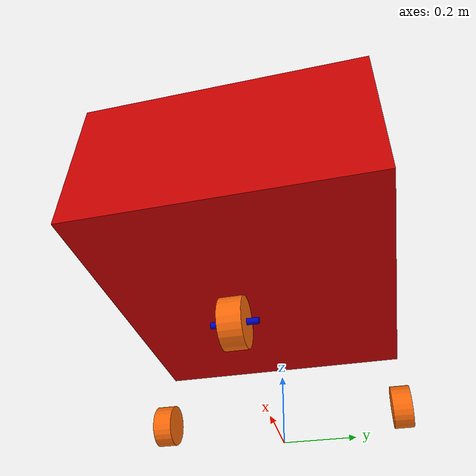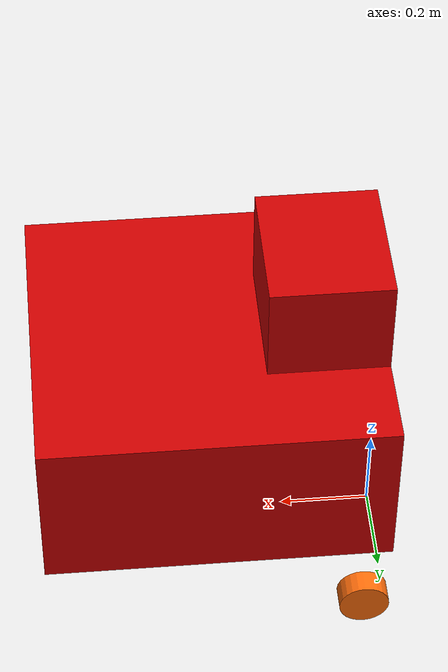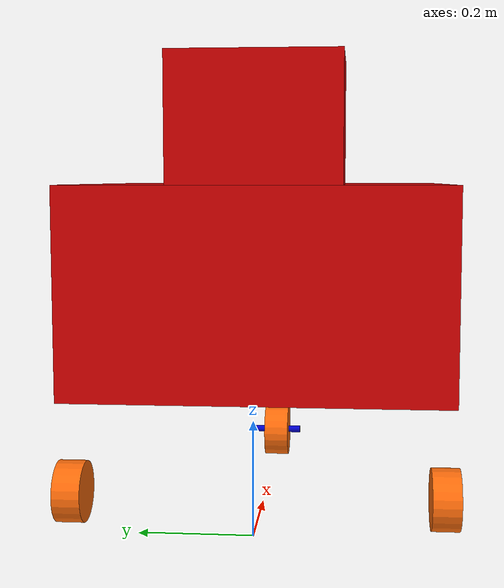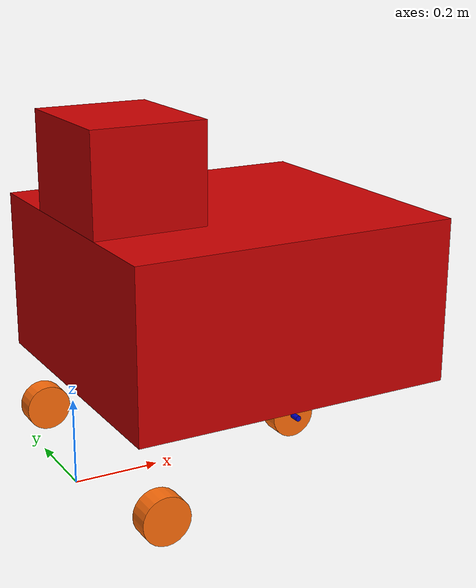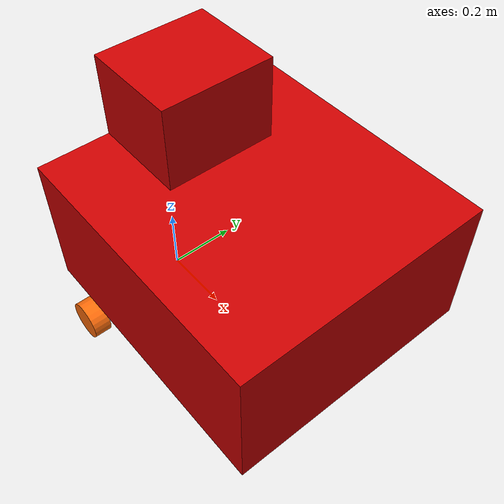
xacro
<?xml version="1.0"?>
<robot xmlns:xacro="http://www.ros.org/wiki/xacro" name="tricycle" >

  <!-- Import Rviz colors -->
  <xacro:include filename="$(find mycar)/urdf/materials.xacro" />

  <!-- Import robot  -->
  <xacro:include filename="$(find mycar)/urdf/xacro_gazebo/car/tricycle_body.xacro"/>
  <xacro:tricycle_body parent="base_link" meshes="package://gazebo_plugins/test/tricycle_drive/meshes/tricycle"/>
</robot>

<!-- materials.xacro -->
<robot>

  <material name="black">
    <color rgba="0.0 0.0 0.0 1.0"/>
  </material>

  <material name="blue">
    <color rgba="0.0 0.0 0.8 1.0"/>
  </material>

  <material name="green">
    <color rgba="0.0 0.8 0.0 1.0"/>
  </material>

  <material name="grey">
    <color rgba="0.2 0.2 0.2 1.0"/>
  </material>

  <material name="orange">
    <color rgba="${255/255} ${108/255} ${10/255} 1.0"/>
  </material>

  <material name="brown">
    <color rgba="${222/255} ${207/255} ${195/255} 1.0"/>
  </material>

  <material name="red">
    <color rgba="0.8 0.0 0.0 1.0"/>
  </material>

  <material name="white">
    <color rgba="1.0 1.0 1.0 1.0"/>
  </material>

</robot>

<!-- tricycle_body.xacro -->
<robot xmlns:xacro="http://www.ros.org/wiki/xacro">
  <xacro:property name="M_PI" value="3.1415926535897931" />
  <xacro:property name="radius_actuated_wheel" value="0.055" />
  <xacro:property name="radius_encoder_wheel" value="0.055" />

  <xacro:property name="DX" value="0.75" />
  <xacro:property name="DY" value="0.69" />
  <xacro:property name="DZ" value="0.375" />

  <xacro:property name="DX2" value="0.26" />
  <xacro:property name="DY2" value="0.30" />
  <xacro:property name="DZ2" value="0.225" />

  <xacro:include filename="$(find mycar)/urdf/xacro_gazebo/car/inertia_tensors.xacro"/>
  <xacro:include filename="$(find mycar)/urdf/xacro_gazebo/car/tricycle_chassis.xacro"/>
  <xacro:include filename="$(find mycar)/urdf/xacro_gazebo/car/wheel.xacro"/>
  <xacro:include filename="$(find mycar)/urdf/xacro_gazebo/car/wheel_actuated.xacro"/>
  <xacro:include filename="$(find mycar)/urdf/xacro_gazebo/car/tricycle_plugins.xacro"/>

  <xacro:macro name="tricycle_body" params="parent meshes">

    <!-- base_link -->
    <link name="${parent}"/>

    <!-- Chassis -->
    <xacro:tricycle_chassis name="chassis" parent="${parent}" xyz="${DX/2} 0 ${DZ/2+0.225}" rpy="0 0 0"  meshes="${meshes}" DX="${DX}" DY="${DY}" DZ="${DZ}"/>
    <xacro:tricycle_chassis name="chassis2" parent="${parent}" xyz="${DX2/2} 0 0.7125" rpy="0 0 0"  meshes="${meshes}" DX="${DX2}" DY="${DY2}" DZ="${DZ2}"/>
    <!-- Wheels  -->
    <xacro:wheel name="left"   parent="${parent}"  xyz="${radius_encoder_wheel}   ${0.69/2-0.03/2} ${radius_encoder_wheel}" rpy="${-M_PI/2} 0 0" radius="${radius_encoder_wheel}" length="0.05" meshes="${meshes}"/>
    <xacro:wheel name="right"    parent="${parent}"  xyz="${radius_encoder_wheel}  ${-0.69/2+0.03/2} ${radius_encoder_wheel}" rpy="${-M_PI/2} 0 0" radius="${radius_encoder_wheel}" length="0.05" meshes="${meshes}"/>
    <xacro:wheel_actuated name="front"  parent="${parent}"  xyz="${0.75*3/4}  0.0   ${radius_actuated_wheel}" rpy="${-M_PI/2} 0 0" radius="${radius_actuated_wheel}" length="0.05" meshes="${meshes}"/>

    <!-- Motor plugin -->
    <xacro:tricycle_drive />

  </xacro:macro>
</robot>

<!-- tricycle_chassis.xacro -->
<robot xmlns:xacro="http://ros.org/wiki/xacro">
  <xacro:property name="M_PI" value="3.1415926535897931" />

  <xacro:macro name="tricycle_chassis" params="name parent xyz rpy meshes DX DY DZ">

  <!-- Chassis -->
  <joint name="${parent}_${name}_joint" type="fixed">
    <origin xyz="${xyz}" rpy="${rpy}"/>
    <parent link="${parent}"/>
    <child link="${name}"/>
  </joint>
  <link name="${name}">
    <visual name="${name}_visual">
      <geometry name="${name}_geometry">
        <box size="${DX} ${DY} ${DZ}"/>
      </geometry>
      <material name="red"/>
    </visual>
    <collision>
      <geometry>
        <box size="${DX} ${DY} ${DZ}"/>
      </geometry>
    </collision>
    <xacro:box_inertial x="${DX}" y="${DY}"  z="${DZ}" mass="50.0"/>
  </link>

  <gazebo reference="${name}">
    <material value="Gazebo/Blue"/>
  </gazebo>

  </xacro:macro>

</robot>

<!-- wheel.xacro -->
<robot
  xmlns:xacro="http://ros.org/wiki/xacro">
  <xacro:property name="M_PI" value="3.1415926535897931" />

  <xacro:macro name="wheel" params="name parent xyz rpy radius length meshes">

  <!-- Wheel -->
  <joint name="${name}_wheel_joint" type="continuous">
    <origin xyz="${xyz}" rpy="${rpy}"/>
    <parent link="${parent}"/>
    <child link="${name}_wheel"/>
    <axis xyz="0 0 1"/>
    <anchor xyz="0 0 0"/>
    <limit effort="100" velocity="100" k_velocity="0"/>
    <joint_properties damping="0.0" friction="0.0"/>
  </joint>
  <link name="${name}_wheel">
    <visual name="${name}_wheel_visual">
      <origin xyz="0 0 0" rpy="0 0 0"/>
      <geometry name="{name}_wheel_geometry">
        <cylinder radius="${radius}" length="${length}"/>
      </geometry>
      <material name="orange"/>
    </visual>
    <collision>
      <origin xyz="0 0 0" rpy="0 0 0"/>
      <geometry>
        <cylinder radius="${radius}" length="${length}"/>
      </geometry>
    </collision>
    <xacro:cylinder_inertial radius="${radius}" length="${length}" mass="2.0" />
  </link>
  <gazebo reference="${name}_wheel">
    <material value="Gazebo/Wood"/>
  </gazebo>

  </xacro:macro>

</robot>

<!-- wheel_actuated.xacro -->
<robot xmlns:xacro="http://ros.org/wiki/xacro">
  <xacro:property name="M_PI" value="3.1415926535897931" />

  <xacro:macro name="wheel_actuated" params="name parent xyz rpy radius length meshes">

  <!-- steering joint -->
  <joint name="${name}_steering_joint" type="continuous">
    <origin xyz="${xyz}" rpy="${rpy}"/>
    <parent link="${parent}"/>
    <child link="${name}_steering"/>
    <axis xyz="0 1 0"/>
    <anchor xyz="0 0 0"/>
    <limit effort="100" velocity="100" k_velocity="0"/>
    <joint_properties damping="0.0" friction="0.0"/>
  </joint>
  <link name="${name}_steering">
    <visual name="${name}_visual">
      <origin xyz="0 0 0" rpy="0 0 0"/>
      <geometry name="${name}_geometry">
        <cylinder radius="${radius / 8.0}" length="${length * 2}"/>
      </geometry>
      <material name="blue"/>
    </visual>
    <xacro:cylinder_inertial radius="${radius / 8.0}" length="${length* 2}" mass="2.0" />
  </link>
  <gazebo reference="${name}_steering">
    <material value="Gazebo/Blue"/>
  </gazebo>

  <!-- wheel joint -->
  <xacro:wheel name="${name}"  parent="${name}_steering"  xyz="0 0 0" rpy="0 0 0" radius="${radius}" length="${length}" meshes="${meshes}"/>

  </xacro:macro>

</robot>
